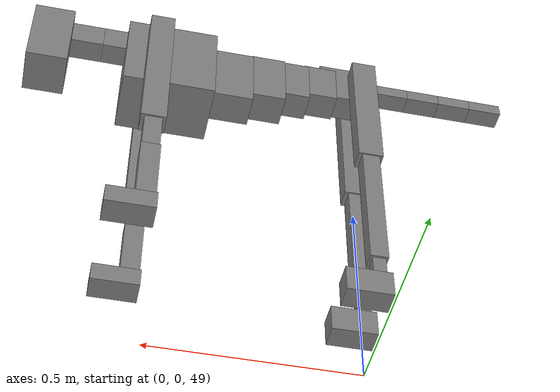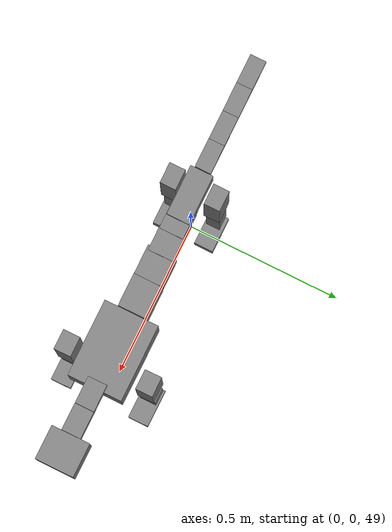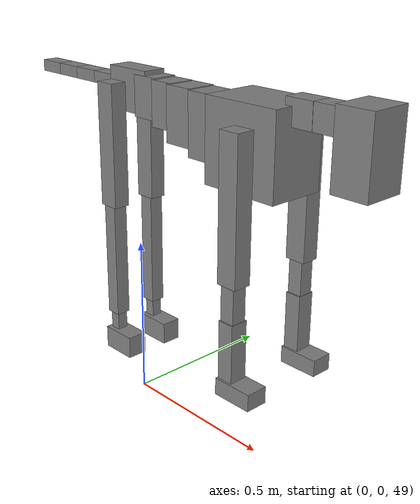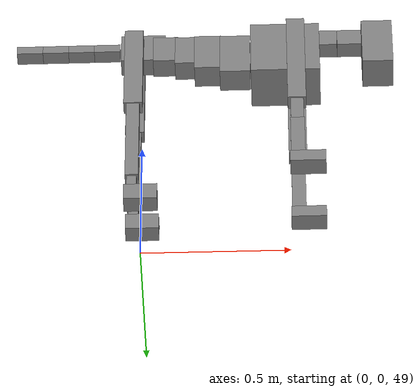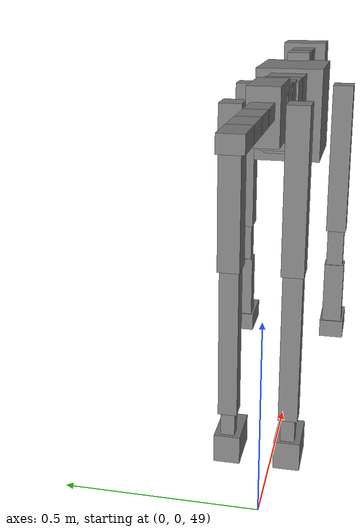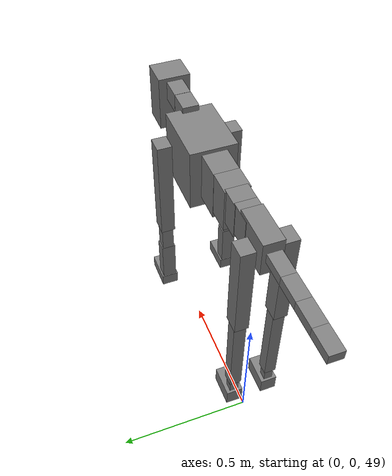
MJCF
<mujoco model="dog">

    <default>
        <joint armature="0.02" stiffness="1" damping="0.2" limited="true"/>
        <geom condim="3" friction="1 0.05 0.05" margin="0.01"/>
        <motor ctrllimited="true" ctrlrange="-1.0 1.0" forcelimited="true" gear="50"/>
    </default>

    <compiler inertiafromgeom="true" angle="radian"/>

    <option timestep="0.016" iterations="50" tolerance="1e-10" solver="Newton" jacobian="dense" cone="pyramidal"/>

    <size nconmax="20000" njmax="60000" nstack="5000000"/>
    <visual>
        <map force="0.1" zfar="30"/>
        <rgba haze="0.15 0.25 0.35 1"/>
        <quality shadowsize="2048"/>
        <global offwidth="800" offheight="800"/>
    </visual>

    <asset>
        <texture type="skybox" builtin="gradient" rgb1="0.3 0.5 0.7" rgb2="0 0 0" width="512" height="512"/>
        <texture name="texplane" type="2d" builtin="checker" rgb1=".2 .3 .4" rgb2=".1 0.15 0.2" width="512" height="512"
                 mark="cross" markrgb=".8 .8 .8"/>
        <texture name="texgeom" type="cube" builtin="flat" mark="cross" width="127" height="1278" rgb1="0.8 0.6 0.4"
                 rgb2="0.8 0.6 0.4" markrgb="1 1 1" random="0.01"/>

        <material name="matplane" reflectance="0.3" texture="texplane" texrepeat="1 1" texuniform="true"/>
        <material name="matgeom" texture="texgeom" texuniform="true" rgba="0.8 0.6 .4 1"/>
    </asset>

    <worldbody>
        <geom name="floor" pos="0 0 0" size="0 0 .25" type="plane" material="matplane" condim="3"/>

        <light directional="false" diffuse=".2 .2 .2" specular="0 0 0" pos="0 0 5" dir="0 0 -1" castshadow="false"/>
        <light mode="targetbodycom" target="torso" directional="false" diffuse=".8 .8 .8" specular="0.3 0.3 0.3"
               pos="0 0 4.0" dir="0 0 -1"/>

        <body name="root" pos="0 0 50">
            <freejoint name="root_1"/>
            <geom type="box" pos="0 0 -0.02" size="0.0774  0.0358  0.063" density="2030"/>

            <body name="spine1" pos="0.054 0 0">
                <joint name="spine1_y" axis="0 1 0" range="0 0.7" limited="true"/>
                <geom type="box" pos="0.02375 0 -0.03" size="0.04375  0.0375  0.05985" density="2030"/>

                <body name="spine2" pos="0.0612 0 0">
                    <joint name="spine2_y" axis="0 1 0" range="-0.15 0.15" limited="true"/>
                    <geom type="box" pos="0.03555  0  -0.04" size="0.04055  0.039  0.06615" density="2030"/>

                    <body name="spine3" pos="0.0730 0 0">
                        <joint name="spine3_y" axis="0 1 0" range="-0.15 0.15" limited="true"/>
                        <geom type="box" pos="0.03555  0  -0.057" size="0.04555  0.0445  0.081" density="2030"/>

                        <body name="spine4" pos="0.0780 0 0">
                            <joint name="spine4_y" axis="0 1 0" range="-0.15 0.15" limited="true"/>
                            <geom type="box" pos="0.05265  0  -0.07" size="0.05265  0.045  0.09135" density="2030"/>

                            <body name="torso" pos="0.1082 0 0">
                                <joint name="torso_y" axis="0 1 0" range="-0.15 0.15" limited="true"/>
                                <geom type="box" pos="0.11925  0  -0.085" size="0.11925  0.085  0.11745"
                                      density="2030"/>

                                <body name="neck1" pos="0.2160  0   0.0180">
                                    <joint name="neck1_y" axis="0 1 0" range="-1.2  -1" limited="true"/>
                                    <geom type="box" pos="0.0423  0  0" size="0.0423  0.03  0.036" density="2325"/>

                                    <body name="neck2" pos="0.0853  0  0">
                                        <joint name="neck2_y" axis="0 1 0" range="0.1  0" limited="true"/>
                                        <geom type="box" pos="0.0423  0  0" size="0.0423  0.03  0.036" density="2325"/>

                                        <body name="head" pos="0.0853  0  0">
                                            <joint name="head_y" axis="0 1 0" range="-0.3  -0.2" limited="true"/>
                                            <geom type="box" pos="0.0531  0  -0.055" size="0.0531  0.06  0.1044"
                                                  density="4030"/>

                                        </body>
                                    </body>
                                </body>

                                <body name="front_shoulder" pos="0.156  0   -0.0480">
                                    <joint name="front_shoulder_y" axis="0 1 0" range="-1 1.5" limited="true"/>
                                    <geom type="box" pos="0 0.13 -0.1736" size="0.0312  0.0267  0.2002" density="1158"/>
                                    <geom type="box" pos="0 -0.13 -0.1736" size="0.0312  0.0267  0.2002"
                                          density="1158"/>

                                    <body name="front_elbow" pos="0  0  -0.3472">
                                        <joint name="front_elbow_y" axis="0 1 0" range="-2 0" limited="true"/>
                                        <geom type="box" pos="0 0.13 -0.0702" size="0.0218  0.0222  0.0702"
                                              density="1081"/>
                                        <geom type="box" pos="0 -0.13 -0.0702" size="0.0218  0.0222  0.0702"
                                              density="1081"/>

                                        <body name="front_wrist" pos="0  0  -0.1404">
                                            <joint name="front_wrist_y" axis="0 1 0" range="-0.2 0" limited="true"/>
                                            <geom type="box" pos="0 0.13 -0.0850" size="0.0239  0.0265  0.0982"
                                                  density="1664"/>
                                            <geom type="box" pos="0 -0.13 -0.0850" size="0.0239  0.0265  0.0982"
                                                  density="1664"/>

                                            <body name="front_finger_end" pos="0  0  -0.1701">
                                                <joint name="front_finger_y" axis="0 1 0" range="-0.4 1"
                                                       limited="true"/>
                                                <geom type="box" pos="0.0326  0.13  -0.0094"
                                                      size="0.0598  0.0326  0.0244" density="1515"/>
                                                <geom type="box" pos="0.0326  -0.13  -0.0094"
                                                      size="0.0598  0.0326  0.0244" density="1515"/>

                                            </body>

                                        </body>
                                    </body>
                                </body>

                            </body>
                        </body>
                    </body>
                </body>
            </body>

            <body name="back_hip" pos="-0.03 0 -0.018">
                <joint name="back_hip_y" axis="0 1 0" range="-1.5 0.3" limited="true"/>
                <geom type="box" pos="0 0.07 -0.1616" size="0.0321  0.0252  0.1844" density="1154"/>
                <geom type="box" pos="0 -0.07 -0.1616" size="0.0321  0.0252  0.1844" density="1154"/>

                <body name="back_knee" pos="0  0  -0.3232">
                    <joint name="back_knee_y" axis="0 1 0" range="0 2.8" limited="true"/>
                    <geom type="box" pos="0 0.07 -0.1796" size="0.0225  0.0222  0.1952" density="1227"/>
                    <geom type="box" pos="0 -0.07 -0.1796" size="0.0225  0.0222  0.1952" density="1227"/>

                    <body name="back_ankle" pos="0  0  -0.3593">
                        <joint name="back_ankle_y" axis="0 1 0" range="-2.2 0" limited="true"/>
                        <geom type="box" pos="0 0.07 -0.0429" size="0.0164  0.0164  0.0542" density="1284"/>
                        <geom type="box" pos="0 -0.07 -0.0429" size="0.0164  0.0164  0.0542" density="1284"/>

                        <body name="back_toe_end" pos="0  0  -0.0859">
                            <joint name="back_toe_y" axis="0 1 0" range="-0.4 1" limited="true"/>
                            <geom type="box" pos="0.0307  0.07  -0.0190" size="0.0562  0.0307  0.0340" density="1515"/>
                            <geom type="box" pos="0.0307  -0.07  -0.0190" size="0.0562  0.0307  0.0340" density="1515"/>

                        </body>
                    </body>
                </body>
            </body>

            <body name="tail1" pos="-0.074 0 -0.006">
                <joint name="tail1_y" axis="0 1 0" range="-0.2 0.2" limited="true"/>
                <geom type="box" pos="-0.0536  0  0" size="0.045  0.025  0.0175" density="1587"/>

                <body name="tail2" pos="-0.09 0 0">
                    <joint name="tail2_y" axis="0 1 0" range="-0.2 0.2" limited="true"/>
                    <geom type="box" pos="-0.0536  0  0" size="0.045  0.025  0.0175" density="1587"/>

                    <body name="tail3" pos="-0.09 0 0">
                        <joint name="tail3_y" axis="0 1 0" range="-0.2 0.2" limited="true"/>
                        <geom type="box" pos="-0.0536  0  0" size="0.045  0.025  0.0175" density="1587"/>

                        <body name="tail4" pos="-0.09 0 0">
                            <joint name="tail4_y" axis="0 1 0" range="-0.2 0.2" limited="true"/>
                            <geom type="box" pos="-0.0536  0  0" size="0.045  0.025  0.0175" density="1587"/>

                        </body>
                    </body>
                </body>
            </body>
        </body>
    </worldbody>

    <actuator>
        <motor joint="spine1_y" forcerange="-150 150     "/>
        <motor joint="spine2_y" forcerange="-150 150     "/>
        <motor joint="spine3_y" forcerange="-150 150     "/>
        <motor joint="spine4_y" forcerange="-150 150     "/>
        <motor joint="torso_y" forcerange="-150 150     "/>
        <motor joint="neck1_y" forcerange="-100 100       "/>
        <motor joint="neck2_y" forcerange="-100 100       "/>
        <motor joint="head_y" forcerange="-150 150       "/>
        <motor joint="front_shoulder_y" forcerange="-162.66 115.17"/>
        <motor joint="front_elbow_y" forcerange="-143.03 118.77"/>
        <motor joint="front_wrist_y" forcerange="-69.72 142.42"/>
        <motor joint="front_finger_y" forcerange="-73.48 60.47"/>
        <motor joint="back_hip_y" forcerange="-225.93 309.56"/>
        <motor joint="back_knee_y" forcerange="-319.94 203.33"/>
        <motor joint="back_angle_y" forcerange="-85.07 77.55"/>
        <motor joint="back_toe_y" forcerange="-74.03 91.39"/>
        <motor joint="tail1_y" forcerange="-50 50     "/>
        <motor joint="tail2_y" forcerange="-50 50     "/>
        <motor joint="tail3_y" forcerange="-50 50     "/>
        <motor joint="tail4_y" forcerange="-50 50     "/>
    </actuator>
</mujoco>
